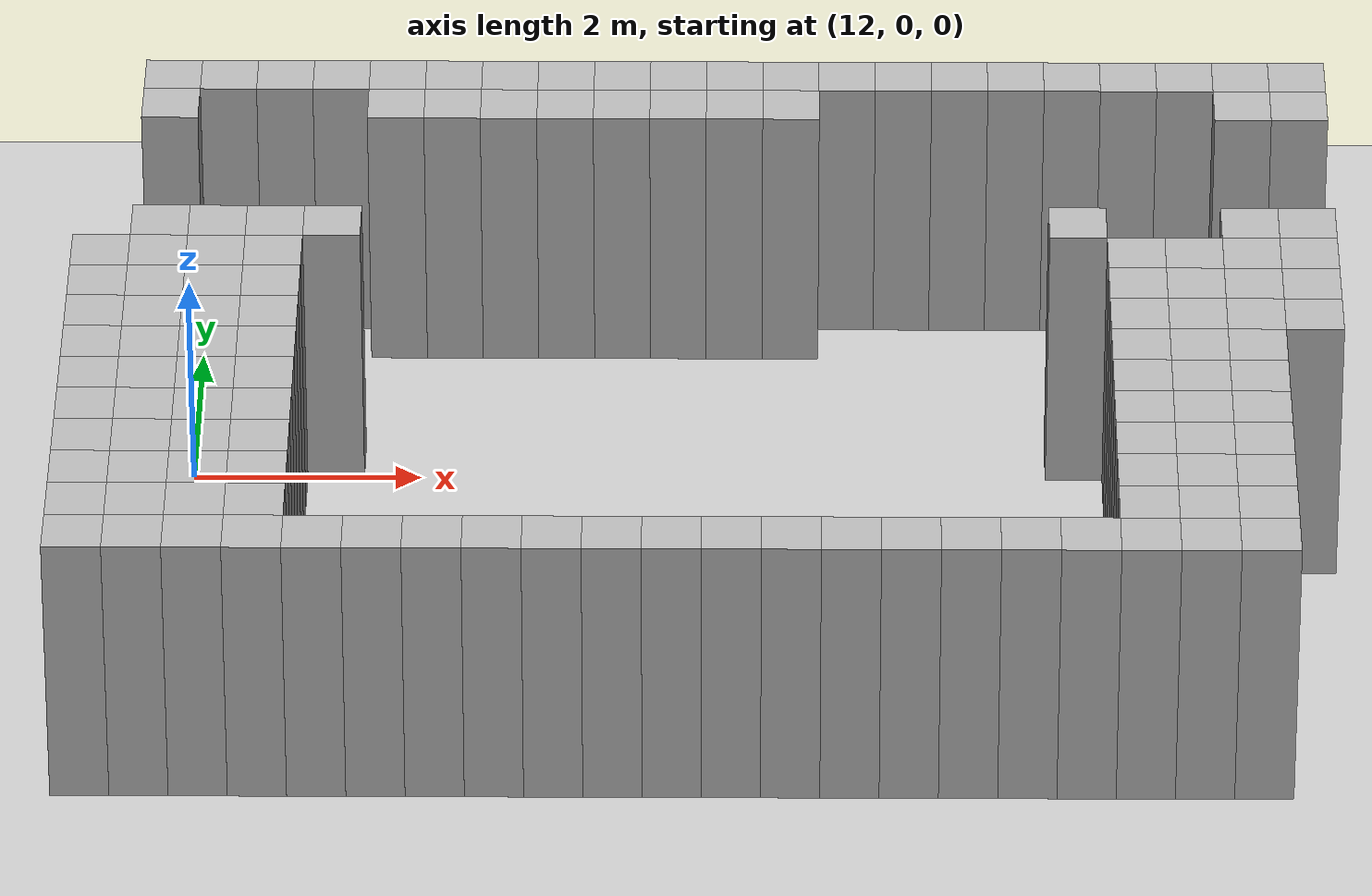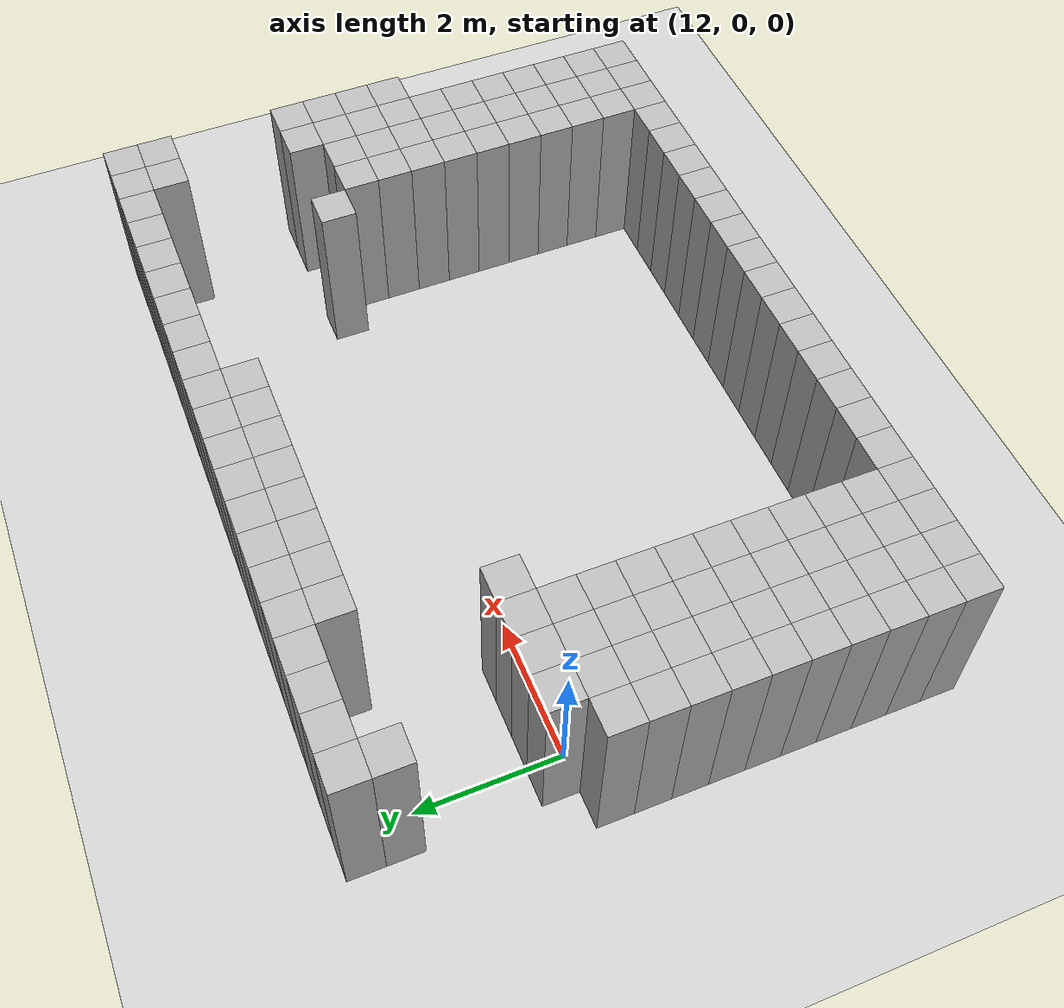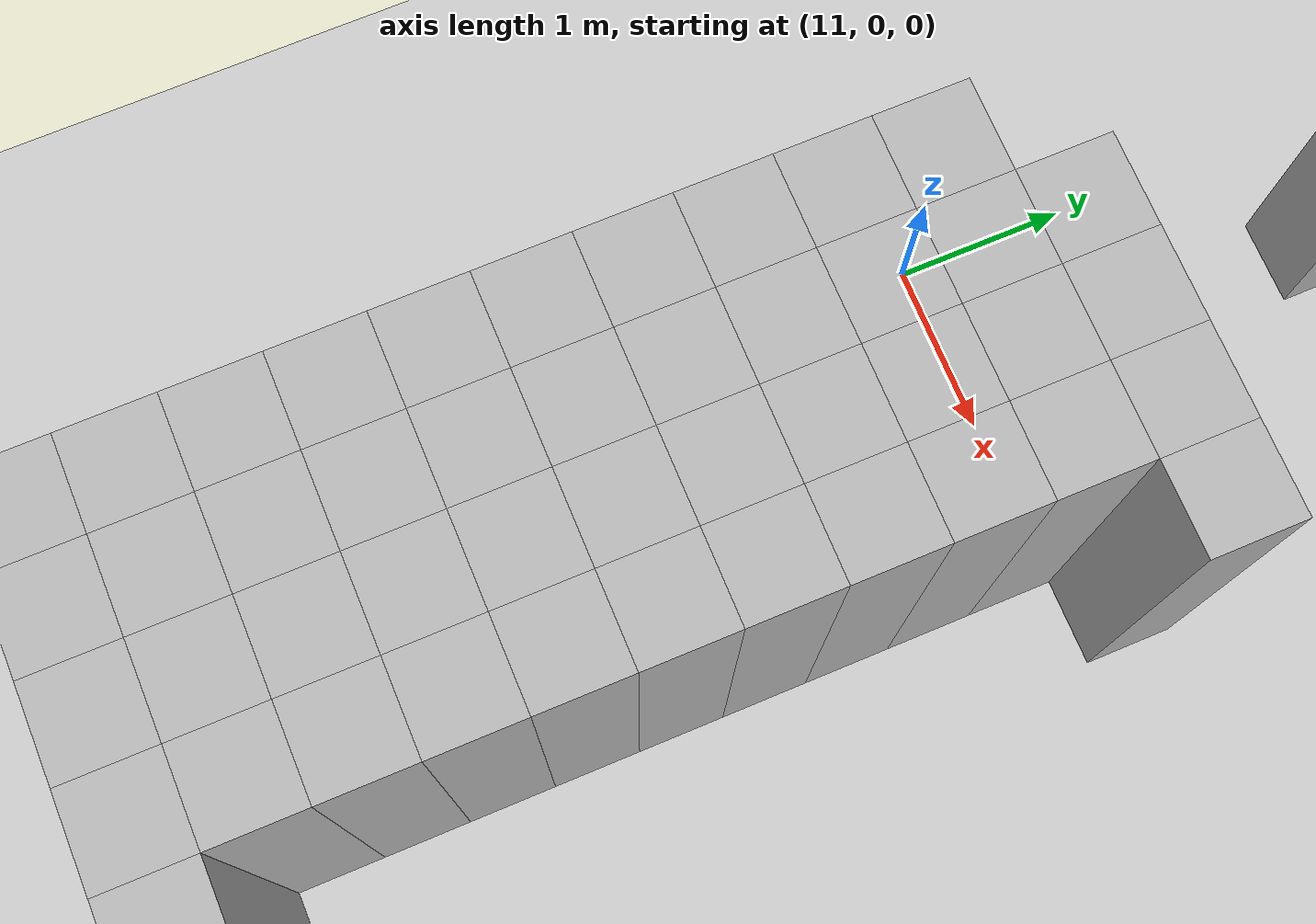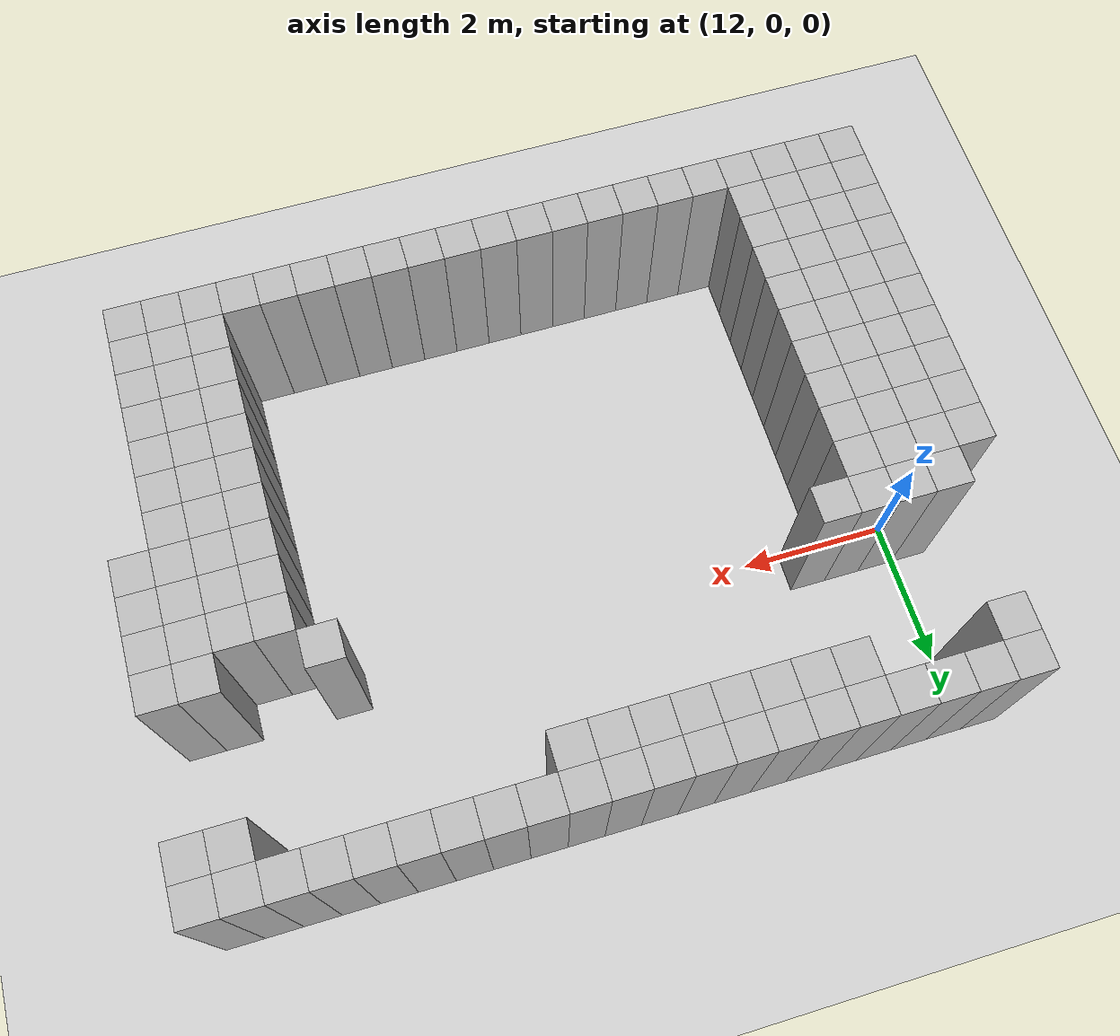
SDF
<sdf version="1.6">
 <world name="map_world">
  <include><uri>model://ground_plane</uri></include>
  <include><uri>model://sun</uri></include>
  <model name="wall_33">
   <static>true</static>
   <pose>11.750 2.750 1.250 0 0 0</pose>
   <link name="link">
    <collision name="collision"><geometry><box><size>0.500 0.500 2.500</size></box></geometry></collision>
    <visual name="visual"><geometry><box><size>0.500 0.500 2.500</size></box></geometry></visual>
   </link>
  </model>
  <model name="wall_34">
   <static>true</static>
   <pose>12.250 2.750 1.250 0 0 0</pose>
   <link name="link">
    <collision name="collision"><geometry><box><size>0.500 0.500 2.500</size></box></geometry></collision>
    <visual name="visual"><geometry><box><size>0.500 0.500 2.500</size></box></geometry></visual>
   </link>
  </model>
  <model name="wall_35">
   <static>true</static>
   <pose>12.750 2.750 1.250 0 0 0</pose>
   <link name="link">
    <collision name="collision"><geometry><box><size>0.500 0.500 2.500</size></box></geometry></collision>
    <visual name="visual"><geometry><box><size>0.500 0.500 2.500</size></box></geometry></visual>
   </link>
  </model>
  <model name="wall_36">
   <static>true</static>
   <pose>13.250 2.750 1.250 0 0 0</pose>
   <link name="link">
    <collision name="collision"><geometry><box><size>0.500 0.500 2.500</size></box></geometry></collision>
    <visual name="visual"><geometry><box><size>0.500 0.500 2.500</size></box></geometry></visual>
   </link>
  </model>
  <model name="wall_37">
   <static>true</static>
   <pose>13.750 2.750 1.250 0 0 0</pose>
   <link name="link">
    <collision name="collision"><geometry><box><size>0.500 0.500 2.500</size></box></geometry></collision>
    <visual name="visual"><geometry><box><size>0.500 0.500 2.500</size></box></geometry></visual>
   </link>
  </model>
  <model name="wall_38">
   <static>true</static>
   <pose>14.250 2.750 1.250 0 0 0</pose>
   <link name="link">
    <collision name="collision"><geometry><box><size>0.500 0.500 2.500</size></box></geometry></collision>
    <visual name="visual"><geometry><box><size>0.500 0.500 2.500</size></box></geometry></visual>
   </link>
  </model>
  <model name="wall_39">
   <static>true</static>
   <pose>14.750 2.750 1.250 0 0 0</pose>
   <link name="link">
    <collision name="collision"><geometry><box><size>0.500 0.500 2.500</size></box></geometry></collision>
    <visual name="visual"><geometry><box><size>0.500 0.500 2.500</size></box></geometry></visual>
   </link>
  </model>
  <model name="wall_40">
   <static>true</static>
   <pose>15.250 2.750 1.250 0 0 0</pose>
   <link name="link">
    <collision name="collision"><geometry><box><size>0.500 0.500 2.500</size></box></geometry></collision>
    <visual name="visual"><geometry><box><size>0.500 0.500 2.500</size></box></geometry></visual>
   </link>
  </model>
  <model name="wall_41">
   <static>true</static>
   <pose>15.750 2.750 1.250 0 0 0</pose>
   <link name="link">
    <collision name="collision"><geometry><box><size>0.500 0.500 2.500</size></box></geometry></collision>
    <visual name="visual"><geometry><box><size>0.500 0.500 2.500</size></box></geometry></visual>
   </link>
  </model>
  <model name="wall_42">
   <static>true</static>
   <pose>16.250 2.750 1.250 0 0 0</pose>
   <link name="link">
    <collision name="collision"><geometry><box><size>0.500 0.500 2.500</size></box></geometry></collision>
    <visual name="visual"><geometry><box><size>0.500 0.500 2.500</size></box></geometry></visual>
   </link>
  </model>
  <model name="wall_43">
   <static>true</static>
   <pose>16.750 2.750 1.250 0 0 0</pose>
   <link name="link">
    <collision name="collision"><geometry><box><size>0.500 0.500 2.500</size></box></geometry></collision>
    <visual name="visual"><geometry><box><size>0.500 0.500 2.500</size></box></geometry></visual>
   </link>
  </model>
  <model name="wall_44">
   <static>true</static>
   <pose>17.250 2.750 1.250 0 0 0</pose>
   <link name="link">
    <collision name="collision"><geometry><box><size>0.500 0.500 2.500</size></box></geometry></collision>
    <visual name="visual"><geometry><box><size>0.500 0.500 2.500</size></box></geometry></visual>
   </link>
  </model>
  <model name="wall_45">
   <static>true</static>
   <pose>17.750 2.750 1.250 0 0 0</pose>
   <link name="link">
    <collision name="collision"><geometry><box><size>0.500 0.500 2.500</size></box></geometry></collision>
    <visual name="visual"><geometry><box><size>0.500 0.500 2.500</size></box></geometry></visual>
   </link>
  </model>
  <model name="wall_46">
   <static>true</static>
   <pose>18.250 2.750 1.250 0 0 0</pose>
   <link name="link">
    <collision name="collision"><geometry><box><size>0.500 0.500 2.500</size></box></geometry></collision>
    <visual name="visual"><geometry><box><size>0.500 0.500 2.500</size></box></geometry></visual>
   </link>
  </model>
  <model name="wall_47">
   <static>true</static>
   <pose>18.750 2.750 1.250 0 0 0</pose>
   <link name="link">
    <collision name="collision"><geometry><box><size>0.500 0.500 2.500</size></box></geometry></collision>
    <visual name="visual"><geometry><box><size>0.500 0.500 2.500</size></box></geometry></visual>
   </link>
  </model>
  <model name="wall_48">
   <static>true</static>
   <pose>19.250 2.750 1.250 0 0 0</pose>
   <link name="link">
    <collision name="collision"><geometry><box><size>0.500 0.500 2.500</size></box></geometry></collision>
    <visual name="visual"><geometry><box><size>0.500 0.500 2.500</size></box></geometry></visual>
   </link>
  </model>
  <model name="wall_49">
   <static>true</static>
   <pose>19.750 2.750 1.250 0 0 0</pose>
   <link name="link">
    <collision name="collision"><geometry><box><size>0.500 0.500 2.500</size></box></geometry></collision>
    <visual name="visual"><geometry><box><size>0.500 0.500 2.500</size></box></geometry></visual>
   </link>
  </model>
  <model name="wall_50">
   <static>true</static>
   <pose>20.250 2.750 1.250 0 0 0</pose>
   <link name="link">
    <collision name="collision"><geometry><box><size>0.500 0.500 2.500</size></box></geometry></collision>
    <visual name="visual"><geometry><box><size>0.500 0.500 2.500</size></box></geometry></visual>
   </link>
  </model>
  <model name="wall_51">
   <static>true</static>
   <pose>20.750 2.750 1.250 0 0 0</pose>
   <link name="link">
    <collision name="collision"><geometry><box><size>0.500 0.500 2.500</size></box></geometry></collision>
    <visual name="visual"><geometry><box><size>0.500 0.500 2.500</size></box></geometry></visual>
   </link>
  </model>
  <model name="wall_52">
   <static>true</static>
   <pose>21.250 2.750 1.250 0 0 0</pose>
   <link name="link">
    <collision name="collision"><geometry><box><size>0.500 0.500 2.500</size></box></geometry></collision>
    <visual name="visual"><geometry><box><size>0.500 0.500 2.500</size></box></geometry></visual>
   </link>
  </model>
  <model name="wall_53">
   <static>true</static>
   <pose>21.750 2.750 1.250 0 0 0</pose>
   <link name="link">
    <collision name="collision"><geometry><box><size>0.500 0.500 2.500</size></box></geometry></collision>
    <visual name="visual"><geometry><box><size>0.500 0.500 2.500</size></box></geometry></visual>
   </link>
  </model>
  <model name="wall_98">
   <static>true</static>
   <pose>11.750 2.250 1.250 0 0 0</pose>
   <link name="link">
    <collision name="collision"><geometry><box><size>0.500 0.500 2.500</size></box></geometry></collision>
    <visual name="visual"><geometry><box><size>0.500 0.500 2.500</size></box></geometry></visual>
   </link>
  </model>
  <model name="wall_99">
   <static>true</static>
   <pose>13.750 2.250 1.250 0 0 0</pose>
   <link name="link">
    <collision name="collision"><geometry><box><size>0.500 0.500 2.500</size></box></geometry></collision>
    <visual name="visual"><geometry><box><size>0.500 0.500 2.500</size></box></geometry></visual>
   </link>
  </model>
  <model name="wall_100">
   <static>true</static>
   <pose>14.250 2.250 1.250 0 0 0</pose>
   <link name="link">
    <collision name="collision"><geometry><box><size>0.500 0.500 2.500</size></box></geometry></collision>
    <visual name="visual"><geometry><box><size>0.500 0.500 2.500</size></box></geometry></visual>
   </link>
  </model>
  <model name="wall_101">
   <static>true</static>
   <pose>14.750 2.250 1.250 0 0 0</pose>
   <link name="link">
    <collision name="collision"><geometry><box><size>0.500 0.500 2.500</size></box></geometry></collision>
    <visual name="visual"><geometry><box><size>0.500 0.500 2.500</size></box></geometry></visual>
   </link>
  </model>
  <model name="wall_102">
   <static>true</static>
   <pose>15.250 2.250 1.250 0 0 0</pose>
   <link name="link">
    <collision name="collision"><geometry><box><size>0.500 0.500 2.500</size></box></geometry></collision>
    <visual name="visual"><geometry><box><size>0.500 0.500 2.500</size></box></geometry></visual>
   </link>
  </model>
  <model name="wall_103">
   <static>true</static>
   <pose>15.750 2.250 1.250 0 0 0</pose>
   <link name="link">
    <collision name="collision"><geometry><box><size>0.500 0.500 2.500</size></box></geometry></collision>
    <visual name="visual"><geometry><box><size>0.500 0.500 2.500</size></box></geometry></visual>
   </link>
  </model>
  <model name="wall_104">
   <static>true</static>
   <pose>16.250 2.250 1.250 0 0 0</pose>
   <link name="link">
    <collision name="collision"><geometry><box><size>0.500 0.500 2.500</size></box></geometry></collision>
    <visual name="visual"><geometry><box><size>0.500 0.500 2.500</size></box></geometry></visual>
   </link>
  </model>
  <model name="wall_105">
   <static>true</static>
   <pose>16.750 2.250 1.250 0 0 0</pose>
   <link name="link">
    <collision name="collision"><geometry><box><size>0.500 0.500 2.500</size></box></geometry></collision>
    <visual name="visual"><geometry><box><size>0.500 0.500 2.500</size></box></geometry></visual>
   </link>
  </model>
  <model name="wall_106">
   <static>true</static>
   <pose>17.250 2.250 1.250 0 0 0</pose>
   <link name="link">
    <collision name="collision"><geometry><box><size>0.500 0.500 2.500</size></box></geometry></collision>
    <visual name="visual"><geometry><box><size>0.500 0.500 2.500</size></box></geometry></visual>
   </link>
  </model>
  <model name="wall_107">
   <static>true</static>
   <pose>21.250 2.250 1.250 0 0 0</pose>
   <link name="link">
    <collision name="collision"><geometry><box><size>0.500 0.500 2.500</size></box></geometry></collision>
    <visual name="visual"><geometry><box><size>0.500 0.500 2.500</size></box></geometry></visual>
   </link>
  </model>
  <model name="wall_108">
   <static>true</static>
   <pose>21.750 2.250 1.250 0 0 0</pose>
   <link name="link">
    <collision name="collision"><geometry><box><size>0.500 0.500 2.500</size></box></geometry></collision>
    <visual name="visual"><geometry><box><size>0.500 0.500 2.500</size></box></geometry></visual>
   </link>
  </model>
  <model name="wall_132">
   <static>true</static>
   <pose>11.750 0.250 1.250 0 0 0</pose>
   <link name="link">
    <collision name="collision"><geometry><box><size>0.500 0.500 2.500</size></box></geometry></collision>
    <visual name="visual"><geometry><box><size>0.500 0.500 2.500</size></box></geometry></visual>
   </link>
  </model>
  <model name="wall_133">
   <static>true</static>
   <pose>12.250 0.250 1.250 0 0 0</pose>
   <link name="link">
    <collision name="collision"><geometry><box><size>0.500 0.500 2.500</size></box></geometry></collision>
    <visual name="visual"><geometry><box><size>0.500 0.500 2.500</size></box></geometry></visual>
   </link>
  </model>
  <model name="wall_134">
   <static>true</static>
   <pose>12.750 0.250 1.250 0 0 0</pose>
   <link name="link">
    <collision name="collision"><geometry><box><size>0.500 0.500 2.500</size></box></geometry></collision>
    <visual name="visual"><geometry><box><size>0.500 0.500 2.500</size></box></geometry></visual>
   </link>
  </model>
  <model name="wall_135">
   <static>true</static>
   <pose>13.250 0.250 1.250 0 0 0</pose>
   <link name="link">
    <collision name="collision"><geometry><box><size>0.500 0.500 2.500</size></box></geometry></collision>
    <visual name="visual"><geometry><box><size>0.500 0.500 2.500</size></box></geometry></visual>
   </link>
  </model>
  <model name="wall_136">
   <static>true</static>
   <pose>19.750 0.250 1.250 0 0 0</pose>
   <link name="link">
    <collision name="collision"><geometry><box><size>0.500 0.500 2.500</size></box></geometry></collision>
    <visual name="visual"><geometry><box><size>0.500 0.500 2.500</size></box></geometry></visual>
   </link>
  </model>
  <model name="wall_137">
   <static>true</static>
   <pose>21.250 0.250 1.250 0 0 0</pose>
   <link name="link">
    <collision name="collision"><geometry><box><size>0.500 0.500 2.500</size></box></geometry></collision>
    <visual name="visual"><geometry><box><size>0.500 0.500 2.500</size></box></geometry></visual>
   </link>
  </model>
  <model name="wall_138">
   <static>true</static>
   <pose>21.750 0.250 1.250 0 0 0</pose>
   <link name="link">
    <collision name="collision"><geometry><box><size>0.500 0.500 2.500</size></box></geometry></collision>
    <visual name="visual"><geometry><box><size>0.500 0.500 2.500</size></box></geometry></visual>
   </link>
  </model>
  <model name="wall_176">
   <static>true</static>
   <pose>11.250 -0.250 1.250 0 0 0</pose>
   <link name="link">
    <collision name="collision"><geometry><box><size>0.500 0.500 2.500</size></box></geometry></collision>
    <visual name="visual"><geometry><box><size>0.500 0.500 2.500</size></box></geometry></visual>
   </link>
  </model>
  <model name="wall_177">
   <static>true</static>
   <pose>11.750 -0.250 1.250 0 0 0</pose>
   <link name="link">
    <collision name="collision"><geometry><box><size>0.500 0.500 2.500</size></box></geometry></collision>
    <visual name="visual"><geometry><box><size>0.500 0.500 2.500</size></box></geometry></visual>
   </link>
  </model>
  <model name="wall_178">
   <static>true</static>
   <pose>12.250 -0.250 1.250 0 0 0</pose>
   <link name="link">
    <collision name="collision"><geometry><box><size>0.500 0.500 2.500</size></box></geometry></collision>
    <visual name="visual"><geometry><box><size>0.500 0.500 2.500</size></box></geometry></visual>
   </link>
  </model>
  <model name="wall_179">
   <static>true</static>
   <pose>12.750 -0.250 1.250 0 0 0</pose>
   <link name="link">
    <collision name="collision"><geometry><box><size>0.500 0.500 2.500</size></box></geometry></collision>
    <visual name="visual"><geometry><box><size>0.500 0.500 2.500</size></box></geometry></visual>
   </link>
  </model>
  <model name="wall_180">
   <static>true</static>
   <pose>20.250 -0.250 1.250 0 0 0</pose>
   <link name="link">
    <collision name="collision"><geometry><box><size>0.500 0.500 2.500</size></box></geometry></collision>
    <visual name="visual"><geometry><box><size>0.500 0.500 2.500</size></box></geometry></visual>
   </link>
  </model>
  <model name="wall_181">
   <static>true</static>
   <pose>20.750 -0.250 1.250 0 0 0</pose>
   <link name="link">
    <collision name="collision"><geometry><box><size>0.500 0.500 2.500</size></box></geometry></collision>
    <visual name="visual"><geometry><box><size>0.500 0.500 2.500</size></box></geometry></visual>
   </link>
  </model>
  <model name="wall_182">
   <static>true</static>
   <pose>21.250 -0.250 1.250 0 0 0</pose>
   <link name="link">
    <collision name="collision"><geometry><box><size>0.500 0.500 2.500</size></box></geometry></collision>
    <visual name="visual"><geometry><box><size>0.500 0.500 2.500</size></box></geometry></visual>
   </link>
  </model>
  <model name="wall_183">
   <static>true</static>
   <pose>21.750 -0.250 1.250 0 0 0</pose>
   <link name="link">
    <collision name="collision"><geometry><box><size>0.500 0.500 2.500</size></box></geometry></collision>
    <visual name="visual"><geometry><box><size>0.500 0.500 2.500</size></box></geometry></visual>
   </link>
  </model>
  <model name="wall_248">
   <static>true</static>
   <pose>11.250 -0.750 1.250 0 0 0</pose>
   <link name="link">
    <collision name="collision"><geometry><box><size>0.500 0.500 2.500</size></box></geometry></collision>
    <visual name="visual"><geometry><box><size>0.500 0.500 2.500</size></box></geometry></visual>
   </link>
  </model>
  <model name="wall_249">
   <static>true</static>
   <pose>11.750 -0.750 1.250 0 0 0</pose>
   <link name="link">
    <collision name="collision"><geometry><box><size>0.500 0.500 2.500</size></box></geometry></collision>
    <visual name="visual"><geometry><box><size>0.500 0.500 2.500</size></box></geometry></visual>
   </link>
  </model>
  <model name="wall_250">
   <static>true</static>
   <pose>12.250 -0.750 1.250 0 0 0</pose>
   <link name="link">
    <collision name="collision"><geometry><box><size>0.500 0.500 2.500</size></box></geometry></collision>
    <visual name="visual"><geometry><box><size>0.500 0.500 2.500</size></box></geometry></visual>
   </link>
  </model>
  <model name="wall_251">
   <static>true</static>
   <pose>12.750 -0.750 1.250 0 0 0</pose>
   <link name="link">
    <collision name="collision"><geometry><box><size>0.500 0.500 2.500</size></box></geometry></collision>
    <visual name="visual"><geometry><box><size>0.500 0.500 2.500</size></box></geometry></visual>
   </link>
  </model>
  <model name="wall_252">
   <static>true</static>
   <pose>20.250 -0.750 1.250 0 0 0</pose>
   <link name="link">
    <collision name="collision"><geometry><box><size>0.500 0.500 2.500</size></box></geometry></collision>
    <visual name="visual"><geometry><box><size>0.500 0.500 2.500</size></box></geometry></visual>
   </link>
  </model>
  <model name="wall_253">
   <static>true</static>
   <pose>20.750 -0.750 1.250 0 0 0</pose>
   <link name="link">
    <collision name="collision"><geometry><box><size>0.500 0.500 2.500</size></box></geometry></collision>
    <visual name="visual"><geometry><box><size>0.500 0.500 2.500</size></box></geometry></visual>
   </link>
  </model>
  <model name="wall_254">
   <static>true</static>
   <pose>21.250 -0.750 1.250 0 0 0</pose>
   <link name="link">
    <collision name="collision"><geometry><box><size>0.500 0.500 2.500</size></box></geometry></collision>
    <visual name="visual"><geometry><box><size>0.500 0.500 2.500</size></box></geometry></visual>
   </link>
  </model>
  <model name="wall_255">
   <static>true</static>
   <pose>21.750 -0.750 1.250 0 0 0</pose>
   <link name="link">
    <collision name="collision"><geometry><box><size>0.500 0.500 2.500</size></box></geometry></collision>
    <visual name="visual"><geometry><box><size>0.500 0.500 2.500</size></box></geometry></visual>
   </link>
  </model>
  <model name="wall_320">
   <static>true</static>
   <pose>11.250 -1.250 1.250 0 0 0</pose>
   <link name="link">
    <collision name="collision"><geometry><box><size>0.500 0.500 2.500</size></box></geometry></collision>
    <visual name="visual"><geometry><box><size>0.500 0.500 2.500</size></box></geometry></visual>
   </link>
  </model>
  <model name="wall_321">
   <static>true</static>
   <pose>11.750 -1.250 1.250 0 0 0</pose>
   <link name="link">
    <collision name="collision"><geometry><box><size>0.500 0.500 2.500</size></box></geometry></collision>
    <visual name="visual"><geometry><box><size>0.500 0.500 2.500</size></box></geometry></visual>
   </link>
  </model>
  <model name="wall_322">
   <static>true</static>
   <pose>12.250 -1.250 1.250 0 0 0</pose>
   <link name="link">
    <collision name="collision"><geometry><box><size>0.500 0.500 2.500</size></box></geometry></collision>
    <visual name="visual"><geometry><box><size>0.500 0.500 2.500</size></box></geometry></visual>
   </link>
  </model>
  <model name="wall_323">
   <static>true</static>
   <pose>12.750 -1.250 1.250 0 0 0</pose>
   <link name="link">
    <collision name="collision"><geometry><box><size>0.500 0.500 2.500</size></box></geometry></collision>
    <visual name="visual"><geometry><box><size>0.500 0.500 2.500</size></box></geometry></visual>
   </link>
  </model>
  <model name="wall_324">
   <static>true</static>
   <pose>20.250 -1.250 1.250 0 0 0</pose>
   <link name="link">
    <collision name="collision"><geometry><box><size>0.500 0.500 2.500</size></box></geometry></collision>
    <visual name="visual"><geometry><box><size>0.500 0.500 2.500</size></box></geometry></visual>
   </link>
  </model>
  <model name="wall_325">
   <static>true</static>
   <pose>20.750 -1.250 1.250 0 0 0</pose>
   <link name="link">
    <collision name="collision"><geometry><box><size>0.500 0.500 2.500</size></box></geometry></collision>
    <visual name="visual"><geometry><box><size>0.500 0.500 2.500</size></box></geometry></visual>
   </link>
  </model>
  <model name="wall_326">
   <static>true</static>
   <pose>21.250 -1.250 1.250 0 0 0</pose>
   <link name="link">
    <collision name="collision"><geometry><box><size>0.500 0.500 2.500</size></box></geometry></collision>
    <visual name="visual"><geometry><box><size>0.500 0.500 2.500</size></box></geometry></visual>
   </link>
  </model>
  <model name="wall_327">
   <static>true</static>
   <pose>21.750 -1.250 1.250 0 0 0</pose>
   <link name="link">
    <collision name="collision"><geometry><box><size>0.500 0.500 2.500</size></box></geometry></collision>
    <visual name="visual"><geometry><box><size>0.500 0.500 2.500</size></box></geometry></visual>
   </link>
  </model>
  <model name="wall_392">
   <static>true</static>
   <pose>11.250 -1.750 1.250 0 0 0</pose>
   <link name="link">
    <collision name="collision"><geometry><box><size>0.500 0.500 2.500</size></box></geometry></collision>
    <visual name="visual"><geometry><box><size>0.500 0.500 2.500</size></box></geometry></visual>
   </link>
  </model>
  <model name="wall_393">
   <static>true</static>
   <pose>11.750 -1.750 1.250 0 0 0</pose>
   <link name="link">
    <collision name="collision"><geometry><box><size>0.500 0.500 2.500</size></box></geometry></collision>
    <visual name="visual"><geometry><box><size>0.500 0.500 2.500</size></box></geometry></visual>
   </link>
  </model>
  <model name="wall_394">
   <static>true</static>
   <pose>12.250 -1.750 1.250 0 0 0</pose>
   <link name="link">
    <collision name="collision"><geometry><box><size>0.500 0.500 2.500</size></box></geometry></collision>
    <visual name="visual"><geometry><box><size>0.500 0.500 2.500</size></box></geometry></visual>
   </link>
  </model>
  <model name="wall_395">
   <static>true</static>
   <pose>12.750 -1.750 1.250 0 0 0</pose>
   <link name="link">
    <collision name="collision"><geometry><box><size>0.500 0.500 2.500</size></box></geometry></collision>
    <visual name="visual"><geometry><box><size>0.500 0.500 2.500</size></box></geometry></visual>
   </link>
  </model>
  <model name="wall_396">
   <static>true</static>
   <pose>20.250 -1.750 1.250 0 0 0</pose>
   <link name="link">
    <collision name="collision"><geometry><box><size>0.500 0.500 2.500</size></box></geometry></collision>
    <visual name="visual"><geometry><box><size>0.500 0.500 2.500</size></box></geometry></visual>
   </link>
  </model>
  <model name="wall_397">
   <static>true</static>
   <pose>20.750 -1.750 1.250 0 0 0</pose>
   <link name="link">
    <collision name="collision"><geometry><box><size>0.500 0.500 2.500</size></box></geometry></collision>
    <visual name="visual"><geometry><box><size>0.500 0.500 2.500</size></box></geometry></visual>
   </link>
  </model>
  <model name="wall_398">
   <static>true</static>
   <pose>21.250 -1.750 1.250 0 0 0</pose>
   <link name="link">
    <collision name="collision"><geometry><box><size>0.500 0.500 2.500</size></box></geometry></collision>
    <visual name="visual"><geometry><box><size>0.500 0.500 2.500</size></box></geometry></visual>
   </link>
  </model>
  <model name="wall_464">
   <static>true</static>
   <pose>11.250 -2.250 1.250 0 0 0</pose>
   <link name="link">
    <collision name="collision"><geometry><box><size>0.500 0.500 2.500</size></box></geometry></collision>
    <visual name="visual"><geometry><box><size>0.500 0.500 2.500</size></box></geometry></visual>
   </link>
  </model>
  <model name="wall_465">
   <static>true</static>
   <pose>11.750 -2.250 1.250 0 0 0</pose>
   <link name="link">
    <collision name="collision"><geometry><box><size>0.500 0.500 2.500</size></box></geometry></collision>
    <visual name="visual"><geometry><box><size>0.500 0.500 2.500</size></box></geometry></visual>
   </link>
  </model>
  <model name="wall_466">
   <static>true</static>
   <pose>12.250 -2.250 1.250 0 0 0</pose>
   <link name="link">
    <collision name="collision"><geometry><box><size>0.500 0.500 2.500</size></box></geometry></collision>
    <visual name="visual"><geometry><box><size>0.500 0.500 2.500</size></box></geometry></visual>
   </link>
  </model>
  <model name="wall_467">
   <static>true</static>
   <pose>12.750 -2.250 1.250 0 0 0</pose>
   <link name="link">
    <collision name="collision"><geometry><box><size>0.500 0.500 2.500</size></box></geometry></collision>
    <visual name="visual"><geometry><box><size>0.500 0.500 2.500</size></box></geometry></visual>
   </link>
  </model>
  <model name="wall_468">
   <static>true</static>
   <pose>20.250 -2.250 1.250 0 0 0</pose>
   <link name="link">
    <collision name="collision"><geometry><box><size>0.500 0.500 2.500</size></box></geometry></collision>
    <visual name="visual"><geometry><box><size>0.500 0.500 2.500</size></box></geometry></visual>
   </link>
  </model>
  <model name="wall_469">
   <static>true</static>
   <pose>20.750 -2.250 1.250 0 0 0</pose>
   <link name="link">
    <collision name="collision"><geometry><box><size>0.500 0.500 2.500</size></box></geometry></collision>
    <visual name="visual"><geometry><box><size>0.500 0.500 2.500</size></box></geometry></visual>
   </link>
  </model>
  <model name="wall_470">
   <static>true</static>
   <pose>21.250 -2.250 1.250 0 0 0</pose>
   <link name="link">
    <collision name="collision"><geometry><box><size>0.500 0.500 2.500</size></box></geometry></collision>
    <visual name="visual"><geometry><box><size>0.500 0.500 2.500</size></box></geometry></visual>
   </link>
  </model>
  <model name="wall_536">
   <static>true</static>
   <pose>11.250 -2.750 1.250 0 0 0</pose>
   <link name="link">
    <collision name="collision"><geometry><box><size>0.500 0.500 2.500</size></box></geometry></collision>
    <visual name="visual"><geometry><box><size>0.500 0.500 2.500</size></box></geometry></visual>
   </link>
  </model>
  <model name="wall_537">
   <static>true</static>
   <pose>11.750 -2.750 1.250 0 0 0</pose>
   <link name="link">
    <collision name="collision"><geometry><box><size>0.500 0.500 2.500</size></box></geometry></collision>
    <visual name="visual"><geometry><box><size>0.500 0.500 2.500</size></box></geometry></visual>
   </link>
  </model>
  <model name="wall_538">
   <static>true</static>
   <pose>12.250 -2.750 1.250 0 0 0</pose>
   <link name="link">
    <collision name="collision"><geometry><box><size>0.500 0.500 2.500</size></box></geometry></collision>
    <visual name="visual"><geometry><box><size>0.500 0.500 2.500</size></box></geometry></visual>
   </link>
  </model>
  <model name="wall_539">
   <static>true</static>
   <pose>12.750 -2.750 1.250 0 0 0</pose>
   <link name="link">
    <collision name="collision"><geometry><box><size>0.500 0.500 2.500</size></box></geometry></collision>
    <visual name="visual"><geometry><box><size>0.500 0.500 2.500</size></box></geometry></visual>
   </link>
  </model>
  <model name="wall_540">
   <static>true</static>
   <pose>20.250 -2.750 1.250 0 0 0</pose>
   <link name="link">
    <collision name="collision"><geometry><box><size>0.500 0.500 2.500</size></box></geometry></collision>
    <visual name="visual"><geometry><box><size>0.500 0.500 2.500</size></box></geometry></visual>
   </link>
  </model>
  <model name="wall_541">
   <static>true</static>
   <pose>20.750 -2.750 1.250 0 0 0</pose>
   <link name="link">
    <collision name="collision"><geometry><box><size>0.500 0.500 2.500</size></box></geometry></collision>
    <visual name="visual"><geometry><box><size>0.500 0.500 2.500</size></box></geometry></visual>
   </link>
  </model>
  <model name="wall_542">
   <static>true</static>
   <pose>21.250 -2.750 1.250 0 0 0</pose>
   <link name="link">
    <collision name="collision"><geometry><box><size>0.500 0.500 2.500</size></box></geometry></collision>
    <visual name="visual"><geometry><box><size>0.500 0.500 2.500</size></box></geometry></visual>
   </link>
  </model>
  <model name="wall_608">
   <static>true</static>
   <pose>11.250 -3.250 1.250 0 0 0</pose>
   <link name="link">
    <collision name="collision"><geometry><box><size>0.500 0.500 2.500</size></box></geometry></collision>
    <visual name="visual"><geometry><box><size>0.500 0.500 2.500</size></box></geometry></visual>
   </link>
  </model>
  <model name="wall_609">
   <static>true</static>
   <pose>11.750 -3.250 1.250 0 0 0</pose>
   <link name="link">
    <collision name="collision"><geometry><box><size>0.500 0.500 2.500</size></box></geometry></collision>
    <visual name="visual"><geometry><box><size>0.500 0.500 2.500</size></box></geometry></visual>
   </link>
  </model>
  <model name="wall_610">
   <static>true</static>
   <pose>12.250 -3.250 1.250 0 0 0</pose>
   <link name="link">
    <collision name="collision"><geometry><box><size>0.500 0.500 2.500</size></box></geometry></collision>
    <visual name="visual"><geometry><box><size>0.500 0.500 2.500</size></box></geometry></visual>
   </link>
  </model>
  <model name="wall_611">
   <static>true</static>
   <pose>12.750 -3.250 1.250 0 0 0</pose>
   <link name="link">
    <collision name="collision"><geometry><box><size>0.500 0.500 2.500</size></box></geometry></collision>
    <visual name="visual"><geometry><box><size>0.500 0.500 2.500</size></box></geometry></visual>
   </link>
  </model>
  <model name="wall_612">
   <static>true</static>
   <pose>20.250 -3.250 1.250 0 0 0</pose>
   <link name="link">
    <collision name="collision"><geometry><box><size>0.500 0.500 2.500</size></box></geometry></collision>
    <visual name="visual"><geometry><box><size>0.500 0.500 2.500</size></box></geometry></visual>
   </link>
  </model>
  <model name="wall_613">
   <static>true</static>
   <pose>20.750 -3.250 1.250 0 0 0</pose>
   <link name="link">
    <collision name="collision"><geometry><box><size>0.500 0.500 2.500</size></box></geometry></collision>
    <visual name="visual"><geometry><box><size>0.500 0.500 2.500</size></box></geometry></visual>
   </link>
  </model>
  <model name="wall_614">
   <static>true</static>
   <pose>21.250 -3.250 1.250 0 0 0</pose>
   <link name="link">
    <collision name="collision"><geometry><box><size>0.500 0.500 2.500</size></box></geometry></collision>
    <visual name="visual"><geometry><box><size>0.500 0.500 2.500</size></box></geometry></visual>
   </link>
  </model>
  <model name="wall_680">
   <static>true</static>
   <pose>11.250 -3.750 1.250 0 0 0</pose>
   <link name="link">
    <collision name="collision"><geometry><box><size>0.500 0.500 2.500</size></box></geometry></collision>
    <visual name="visual"><geometry><box><size>0.500 0.500 2.500</size></box></geometry></visual>
   </link>
  </model>
  <model name="wall_681">
   <static>true</static>
   <pose>11.750 -3.750 1.250 0 0 0</pose>
   <link name="link">
    <collision name="collision"><geometry><box><size>0.500 0.500 2.500</size></box></geometry></collision>
    <visual name="visual"><geometry><box><size>0.500 0.500 2.500</size></box></geometry></visual>
   </link>
  </model>
  <model name="wall_682">
   <static>true</static>
   <pose>12.250 -3.750 1.250 0 0 0</pose>
   <link name="link">
    <collision name="collision"><geometry><box><size>0.500 0.500 2.500</size></box></geometry></collision>
    <visual name="visual"><geometry><box><size>0.500 0.500 2.500</size></box></geometry></visual>
   </link>
  </model>
  <model name="wall_683">
   <static>true</static>
   <pose>12.750 -3.750 1.250 0 0 0</pose>
   <link name="link">
    <collision name="collision"><geometry><box><size>0.500 0.500 2.500</size></box></geometry></collision>
    <visual name="visual"><geometry><box><size>0.500 0.500 2.500</size></box></geometry></visual>
   </link>
  </model>
  <model name="wall_684">
   <static>true</static>
   <pose>20.250 -3.750 1.250 0 0 0</pose>
   <link name="link">
    <collision name="collision"><geometry><box><size>0.500 0.500 2.500</size></box></geometry></collision>
    <visual name="visual"><geometry><box><size>0.500 0.500 2.500</size></box></geometry></visual>
   </link>
  </model>
  <model name="wall_685">
   <static>true</static>
   <pose>20.750 -3.750 1.250 0 0 0</pose>
   <link name="link">
    <collision name="collision"><geometry><box><size>0.500 0.500 2.500</size></box></geometry></collision>
    <visual name="visual"><geometry><box><size>0.500 0.500 2.500</size></box></geometry></visual>
   </link>
  </model>
  <model name="wall_686">
   <static>true</static>
   <pose>21.250 -3.750 1.250 0 0 0</pose>
   <link name="link">
    <collision name="collision"><geometry><box><size>0.500 0.500 2.500</size></box></geometry></collision>
    <visual name="visual"><geometry><box><size>0.500 0.500 2.500</size></box></geometry></visual>
   </link>
  </model>
  <model name="wall_752">
   <static>true</static>
   <pose>11.250 -4.250 1.250 0 0 0</pose>
   <link name="link">
    <collision name="collision"><geometry><box><size>0.500 0.500 2.500</size></box></geometry></collision>
    <visual name="visual"><geometry><box><size>0.500 0.500 2.500</size></box></geometry></visual>
   </link>
  </model>
  <model name="wall_753">
   <static>true</static>
   <pose>11.750 -4.250 1.250 0 0 0</pose>
   <link name="link">
    <collision name="collision"><geometry><box><size>0.500 0.500 2.500</size></box></geometry></collision>
    <visual name="visual"><geometry><box><size>0.500 0.500 2.500</size></box></geometry></visual>
   </link>
  </model>
  <model name="wall_754">
   <static>true</static>
   <pose>12.250 -4.250 1.250 0 0 0</pose>
   <link name="link">
    <collision name="collision"><geometry><box><size>0.500 0.500 2.500</size></box></geometry></collision>
    <visual name="visual"><geometry><box><size>0.500 0.500 2.500</size></box></geometry></visual>
   </link>
  </model>
  <model name="wall_755">
   <static>true</static>
   <pose>12.750 -4.250 1.250 0 0 0</pose>
   <link name="link">
    <collision name="collision"><geometry><box><size>0.500 0.500 2.500</size></box></geometry></collision>
    <visual name="visual"><geometry><box><size>0.500 0.500 2.500</size></box></geometry></visual>
   </link>
  </model>
  <model name="wall_756">
   <static>true</static>
   <pose>20.250 -4.250 1.250 0 0 0</pose>
   <link name="link">
    <collision name="collision"><geometry><box><size>0.500 0.500 2.500</size></box></geometry></collision>
    <visual name="visual"><geometry><box><size>0.500 0.500 2.500</size></box></geometry></visual>
   </link>
  </model>
  <model name="wall_757">
   <static>true</static>
   <pose>20.750 -4.250 1.250 0 0 0</pose>
   <link name="link">
    <collision name="collision"><geometry><box><size>0.500 0.500 2.500</size></box></geometry></collision>
    <visual name="visual"><geometry><box><size>0.500 0.500 2.500</size></box></geometry></visual>
   </link>
  </model>
  <model name="wall_758">
   <static>true</static>
   <pose>21.250 -4.250 1.250 0 0 0</pose>
   <link name="link">
    <collision name="collision"><geometry><box><size>0.500 0.500 2.500</size></box></geometry></collision>
    <visual name="visual"><geometry><box><size>0.500 0.500 2.500</size></box></geometry></visual>
   </link>
  </model>
  <model name="wall_824">
   <static>true</static>
   <pose>11.250 -4.750 1.250 0 0 0</pose>
   <link name="link">
    <collision name="collision"><geometry><box><size>0.500 0.500 2.500</size></box></geometry></collision>
    <visual name="visual"><geometry><box><size>0.500 0.500 2.500</size></box></geometry></visual>
   </link>
  </model>
  <model name="wall_825">
   <static>true</static>
   <pose>11.750 -4.750 1.250 0 0 0</pose>
   <link name="link">
    <collision name="collision"><geometry><box><size>0.500 0.500 2.500</size></box></geometry></collision>
    <visual name="visual"><geometry><box><size>0.500 0.500 2.500</size></box></geometry></visual>
   </link>
  </model>
  <model name="wall_826">
   <static>true</static>
   <pose>12.250 -4.750 1.250 0 0 0</pose>
   <link name="link">
    <collision name="collision"><geometry><box><size>0.500 0.500 2.500</size></box></geometry></collision>
    <visual name="visual"><geometry><box><size>0.500 0.500 2.500</size></box></geometry></visual>
   </link>
  </model>
  <model name="wall_827">
   <static>true</static>
   <pose>12.750 -4.750 1.250 0 0 0</pose>
   <link name="link">
    <collision name="collision"><geometry><box><size>0.500 0.500 2.500</size></box></geometry></collision>
    <visual name="visual"><geometry><box><size>0.500 0.500 2.500</size></box></geometry></visual>
   </link>
  </model>
  <model name="wall_828">
   <static>true</static>
   <pose>13.250 -4.750 1.250 0 0 0</pose>
   <link name="link">
    <collision name="collision"><geometry><box><size>0.500 0.500 2.500</size></box></geometry></collision>
    <visual name="visual"><geometry><box><size>0.500 0.500 2.500</size></box></geometry></visual>
   </link>
  </model>
  <model name="wall_829">
   <static>true</static>
   <pose>13.750 -4.750 1.250 0 0 0</pose>
   <link name="link">
    <collision name="collision"><geometry><box><size>0.500 0.500 2.500</size></box></geometry></collision>
    <visual name="visual"><geometry><box><size>0.500 0.500 2.500</size></box></geometry></visual>
   </link>
  </model>
  <model name="wall_830">
   <static>true</static>
   <pose>14.250 -4.750 1.250 0 0 0</pose>
   <link name="link">
    <collision name="collision"><geometry><box><size>0.500 0.500 2.500</size></box></geometry></collision>
    <visual name="visual"><geometry><box><size>0.500 0.500 2.500</size></box></geometry></visual>
   </link>
  </model>
  <model name="wall_831">
   <static>true</static>
   <pose>14.750 -4.750 1.250 0 0 0</pose>
   <link name="link">
    <collision name="collision"><geometry><box><size>0.500 0.500 2.500</size></box></geometry></collision>
    <visual name="visual"><geometry><box><size>0.500 0.500 2.500</size></box></geometry></visual>
   </link>
  </model>
  <model name="wall_832">
   <static>true</static>
   <pose>15.250 -4.750 1.250 0 0 0</pose>
   <link name="link">
    <collision name="collision"><geometry><box><size>0.500 0.500 2.500</size></box></geometry></collision>
    <visual name="visual"><geometry><box><size>0.500 0.500 2.500</size></box></geometry></visual>
   </link>
  </model>
  <model name="wall_833">
   <static>true</static>
   <pose>15.750 -4.750 1.250 0 0 0</pose>
   <link name="link">
    <collision name="collision"><geometry><box><size>0.500 0.500 2.500</size></box></geometry></collision>
    <visual name="visual"><geometry><box><size>0.500 0.500 2.500</size></box></geometry></visual>
   </link>
  </model>
  <model name="wall_834">
   <static>true</static>
   <pose>16.250 -4.750 1.250 0 0 0</pose>
   <link name="link">
    <collision name="collision"><geometry><box><size>0.500 0.500 2.500</size></box></geometry></collision>
    <visual name="visual"><geometry><box><size>0.500 0.500 2.500</size></box></geometry></visual>
   </link>
  </model>
  <model name="wall_835">
   <static>true</static>
   <pose>16.750 -4.750 1.250 0 0 0</pose>
   <link name="link">
    <collision name="collision"><geometry><box><size>0.500 0.500 2.500</size></box></geometry></collision>
    <visual name="visual"><geometry><box><size>0.500 0.500 2.500</size></box></geometry></visual>
   </link>
  </model>
  <model name="wall_836">
   <static>true</static>
   <pose>17.250 -4.750 1.250 0 0 0</pose>
   <link name="link">
    <collision name="collision"><geometry><box><size>0.500 0.500 2.500</size></box></geometry></collision>
    <visual name="visual"><geometry><box><size>0.500 0.500 2.500</size></box></geometry></visual>
   </link>
  </model>
  <model name="wall_837">
   <static>true</static>
   <pose>17.750 -4.750 1.250 0 0 0</pose>
   <link name="link">
    <collision name="collision"><geometry><box><size>0.500 0.500 2.500</size></box></geometry></collision>
    <visual name="visual"><geometry><box><size>0.500 0.500 2.500</size></box></geometry></visual>
   </link>
  </model>
  <model name="wall_838">
   <static>true</static>
   <pose>18.250 -4.750 1.250 0 0 0</pose>
   <link name="link">
    <collision name="collision"><geometry><box><size>0.500 0.500 2.500</size></box></geometry></collision>
    <visual name="visual"><geometry><box><size>0.500 0.500 2.500</size></box></geometry></visual>
   </link>
  </model>
  <model name="wall_839">
   <static>true</static>
   <pose>18.750 -4.750 1.250 0 0 0</pose>
   <link name="link">
    <collision name="collision"><geometry><box><size>0.500 0.500 2.500</size></box></geometry></collision>
    <visual name="visual"><geometry><box><size>0.500 0.500 2.500</size></box></geometry></visual>
   </link>
  </model>
  <model name="wall_840">
   <static>true</static>
   <pose>19.250 -4.750 1.250 0 0 0</pose>
   <link name="link">
    <collision name="collision"><geometry><box><size>0.500 0.500 2.500</size></box></geometry></collision>
    <visual name="visual"><geometry><box><size>0.500 0.500 2.500</size></box></geometry></visual>
   </link>
  </model>
  <model name="wall_841">
   <static>true</static>
   <pose>19.750 -4.750 1.250 0 0 0</pose>
   <link name="link">
    <collision name="collision"><geometry><box><size>0.500 0.500 2.500</size></box></geometry></collision>
    <visual name="visual"><geometry><box><size>0.500 0.500 2.500</size></box></geometry></visual>
   </link>
  </model>
  <model name="wall_842">
   <static>true</static>
   <pose>20.250 -4.750 1.250 0 0 0</pose>
   <link name="link">
    <collision name="collision"><geometry><box><size>0.500 0.500 2.500</size></box></geometry></collision>
    <visual name="visual"><geometry><box><size>0.500 0.500 2.500</size></box></geometry></visual>
   </link>
  </model>
  <model name="wall_843">
   <static>true</static>
   <pose>20.750 -4.750 1.250 0 0 0</pose>
   <link name="link">
    <collision name="collision"><geometry><box><size>0.500 0.500 2.500</size></box></geometry></collision>
    <visual name="visual"><geometry><box><size>0.500 0.500 2.500</size></box></geometry></visual>
   </link>
  </model>
  <model name="wall_844">
   <static>true</static>
   <pose>21.250 -4.750 1.250 0 0 0</pose>
   <link name="link">
    <collision name="collision"><geometry><box><size>0.500 0.500 2.500</size></box></geometry></collision>
    <visual name="visual"><geometry><box><size>0.500 0.500 2.500</size></box></geometry></visual>
   </link>
  </model>
 </world>
</sdf>
